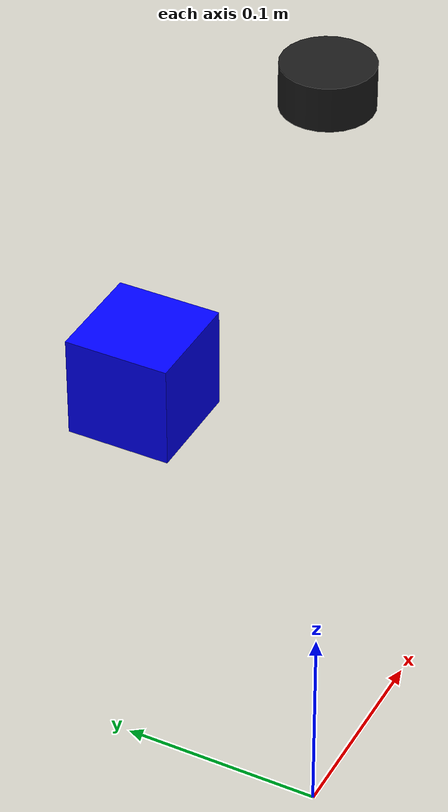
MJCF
<mujoco>
    <worldbody>
        <body name="vacuum_head" pos="0 0 0.4">
            <site name="suction_site" pos="0 0 0" size="0.01"/>
            <geom type="cylinder" size="0.02 0.01" rgba="0.1 0.1 0.1 1"/>
        </body>

        <body name="box" pos="0.2 0.2 0.05">
            <freejoint/>
            <geom name="box_geom" type="box" size="0.03 0.03 0.03" rgba="0 0 1 1"/>
        </body>
    </worldbody>

    <equality>
        <weld name="vacuum_contact" site1="suction_site" body2="box" active="false" solref="0.01 1"/>
    </equality>
</mujoco>
